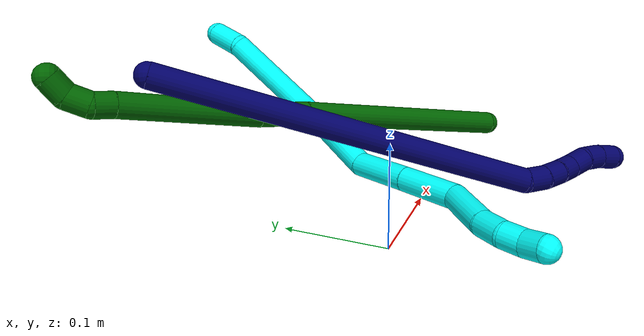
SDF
<sdf version="1.7">
 <world name="default">
  <model name="photoneo_s_sensor">
   <static>1</static>
   <pose>0 0 2 1.57079 1.57079 3.14159</pose>
   <link name="link">
    <inertial><mass>0.1</mass></inertial>
    <sensor name="sensor" type="depth">
     <update_rate>30</update_rate>
     <camera>
      <horizontal_fov>1.22</horizontal_fov>
      <image><width>1920</width><height>1200</height><format>B8G8R8</format></image>
      <clip><near>0.1</near><far>4</far></clip>
      <depth_camera><output>points</output></depth_camera>
     </camera>
     <plugin name="camera_plugin" filename="libgazebo_ros_depth_camera.so">
      <baseline>0.2</baseline>
      <alwaysOn>1</alwaysOn>
      <updateRate>0.0</updateRate>
      <cameraName>camera_ir</cameraName>
      <imageTopicName>/camera/color/image_raw</imageTopicName>
      <cameraInfoTopicName>/camera/color/camera_info</cameraInfoTopicName>
      <depthImageTopicName>/camera/depth/image_raw</depthImageTopicName>
      <depthImageCameraInfoTopicName>/camera/depth/camera_info</depthImageCameraInfoTopicName>
      <pointCloudTopicName>/camera/depth/points</pointCloudTopicName>
      <frameName>fr_optical</frameName>
      <pointCloudCutoff>0.1</pointCloudCutoff>
      <pointCloudCutoffMax>2.0</pointCloudCutoffMax>
      <distortionK1>0</distortionK1>
      <distortionK2>0</distortionK2>
      <distortionK3>0</distortionK3>
      <distortionT1>0</distortionT1>
      <distortionT2>0</distortionT2>
      <CxPrime>0</CxPrime>
      <Cx>0</Cx>
      <Cy>0</Cy>
      <focalLength>0</focalLength>
      <hackBaseline>0</hackBaseline>
     </plugin>
    </sensor>
   </link>
  </model>
  <model name="bin">
   <static>1</static>
   <link name="bottom">
    <collision name="collision-bottom">
     <pose>0 0 -0.01 0 -0 0</pose>
     <geometry><box><size>0.8 0.6 0.02</size></box></geometry>
     <surface>
      <friction><ode><mu>100</mu><mu2>100</mu2></ode></friction>
      <contact><collide_bitmask>65535</collide_bitmask></contact>
     </surface>
    </collision>
   </link>
   <link name="west_wall">
    <collision name="collision-west_wall">
     <pose>-0.41 0 0.1 0 -0 0</pose>
     <geometry><box><size>0.02 0.6 0.2</size></box></geometry>
     <surface>
      <friction><ode><mu>100</mu><mu2>100</mu2></ode></friction>
      <contact><collide_bitmask>65535</collide_bitmask></contact>
     </surface>
    </collision>
   </link>
   <link name="east_wall">
    <collision name="collision-east_wall">
     <pose>0.41 0 0.1 0 -0 0</pose>
     <geometry><box><size>0.02 0.6 0.2</size></box></geometry>
     <surface>
      <friction><ode><mu>100</mu><mu2>100</mu2></ode></friction>
      <contact><collide_bitmask>65535</collide_bitmask></contact>
     </surface>
    </collision>
   </link>
   <link name="south_wall">
    <collision name="collision-south_wall">
     <pose>0 -0.31 0.1 0 -0 0</pose>
     <geometry><box><size>0.8 0.02 0.2</size></box></geometry>
     <surface>
      <friction><ode><mu>100</mu><mu2>100</mu2></ode></friction>
      <contact><collide_bitmask>65535</collide_bitmask></contact>
     </surface>
    </collision>
   </link>
   <link name="north_wall">
    <collision name="collision-north_wall">
     <pose>0 0.31 0.1 0 -0 0</pose>
     <geometry><box><size>0.8 0.02 0.2</size></box></geometry>
     <surface>
      <friction><ode><mu>100</mu><mu2>100</mu2></ode></friction>
      <contact><collide_bitmask>65535</collide_bitmask></contact>
     </surface>
    </collision>
   </link>
  </model>
  <model name="3">
   <static>0</static>
   <link name="3">
    <collision name="collision-cylinder-e_1_1_4">
     <pose>-0.001632 -0.00032 -0.018961 3.12474 -0.085861 -2.75425</pose>
     <geometry><cylinder><radius>0.0125</radius><length>0.038068</length></cylinder></geometry>
     <surface>
      <friction><ode><mu>1.16</mu><mu2>1.16</mu2><slip1>0</slip1><slip2>0</slip2></ode></friction>
      <contact><ode><kp>1e+06</kp><kd>1</kd><max_vel>0</max_vel><min_depth>0.001</min_depth></ode></contact>
     </surface>
    </collision>
    <visual name="visual-cylinder-e_1_1_4">
     <pose>-0.001632 -0.00032 -0.018961 3.12474 -0.085861 -2.75425</pose>
     <geometry><cylinder><radius>0.0125</radius><length>0.038068</length></cylinder></geometry>
     <material><ambient>0.003922 1 0.996078 1</ambient></material>
    </visual>
    <collision name="collision-cylinder-e_2_4_5">
     <pose>-0.004627 0.027101 -0.09818 -2.71016 -0.020532 0.093633</pose>
     <geometry><cylinder><radius>0.0125</radius><length>0.1327</length></cylinder></geometry>
     <surface>
      <friction><ode><mu>1.16</mu><mu2>1.16</mu2><slip1>0</slip1><slip2>0</slip2></ode></friction>
      <contact><ode><kp>1e+06</kp><kd>1</kd><max_vel>0</max_vel><min_depth>0.001</min_depth></ode></contact>
     </surface>
    </collision>
    <visual name="visual-cylinder-e_2_4_5">
     <pose>-0.004627 0.027101 -0.09818 -2.71016 -0.020532 0.093633</pose>
     <geometry><cylinder><radius>0.0125</radius><length>0.1327</length></cylinder></geometry>
     <material><ambient>0.003922 1 0.996078 1</ambient></material>
    </visual>
    <collision name="collision-cylinder-e_3_5_6">
     <pose>-0.018281 0.055393 -0.195499 -3.12672 -0.320217 3.04957</pose>
     <geometry><cylinder><radius>0.0125</radius><length>0.078102</length></cylinder></geometry>
     <surface>
      <friction><ode><mu>1.16</mu><mu2>1.16</mu2><slip1>0</slip1><slip2>0</slip2></ode></friction>
      <contact><ode><kp>1e+06</kp><kd>1</kd><max_vel>0</max_vel><min_depth>0.001</min_depth></ode></contact>
     </surface>
    </collision>
    <visual name="visual-cylinder-e_3_5_6">
     <pose>-0.018281 0.055393 -0.195499 -3.12672 -0.320217 3.04957</pose>
     <geometry><cylinder><radius>0.0125</radius><length>0.078102</length></cylinder></geometry>
     <material><ambient>0.003922 1 0.996078 1</ambient></material>
    </visual>
    <collision name="collision-cylinder-e_4_6_7">
     <pose>-0.033223 0.046602 -0.262773 2.84171 -0.083593 -0.540118</pose>
     <geometry><cylinder><radius>0.0125</radius><length>0.063468</length></cylinder></geometry>
     <surface>
      <friction><ode><mu>1.16</mu><mu2>1.16</mu2><slip1>0</slip1><slip2>0</slip2></ode></friction>
      <contact><ode><kp>1e+06</kp><kd>1</kd><max_vel>0</max_vel><min_depth>0.001</min_depth></ode></contact>
     </surface>
    </collision>
    <visual name="visual-cylinder-e_4_6_7">
     <pose>-0.033223 0.046602 -0.262773 2.84171 -0.083593 -0.540118</pose>
     <geometry><cylinder><radius>0.0125</radius><length>0.063468</length></cylinder></geometry>
     <material><ambient>0.003922 1 0.996078 1</ambient></material>
    </visual>
    <collision name="collision-cylinder-e_5_7_8">
     <pose>-0.037548 0.029724 -0.322526 2.89181 -0.054902 -0.430639</pose>
     <geometry><cylinder><radius>0.0125</radius><length>0.061068</length></cylinder></geometry>
     <surface>
      <friction><ode><mu>1.16</mu><mu2>1.16</mu2><slip1>0</slip1><slip2>0</slip2></ode></friction>
      <contact><ode><kp>1e+06</kp><kd>1</kd><max_vel>0</max_vel><min_depth>0.001</min_depth></ode></contact>
     </surface>
    </collision>
    <visual name="visual-cylinder-e_5_7_8">
     <pose>-0.037548 0.029724 -0.322526 2.89181 -0.054902 -0.430639</pose>
     <geometry><cylinder><radius>0.0125</radius><length>0.061068</length></cylinder></geometry>
     <material><ambient>0.003922 1 0.996078 1</ambient></material>
    </visual>
    <collision name="collision-cylinder-e_6_8_9">
     <pose>-0.05307 0.012532 -0.374024 2.72731 -0.523534 -1.81125</pose>
     <geometry><cylinder><radius>0.0125</radius><length>0.055391</length></cylinder></geometry>
     <surface>
      <friction><ode><mu>1.16</mu><mu2>1.16</mu2><slip1>0</slip1><slip2>0</slip2></ode></friction>
      <contact><ode><kp>1e+06</kp><kd>1</kd><max_vel>0</max_vel><min_depth>0.001</min_depth></ode></contact>
     </surface>
    </collision>
    <visual name="visual-cylinder-e_6_8_9">
     <pose>-0.05307 0.012532 -0.374024 2.72731 -0.523534 -1.81125</pose>
     <geometry><cylinder><radius>0.0125</radius><length>0.055391</length></cylinder></geometry>
     <material><ambient>0.003922 1 0.996078 1</ambient></material>
    </visual>
    <collision name="collision-cylinder-e_7_9_10">
     <pose>-0.071288 -0.002454 -0.408143 2.72849 -0.318072 -1.30661</pose>
     <geometry><cylinder><radius>0.0125</radius><length>0.027961</length></cylinder></geometry>
     <surface>
      <friction><ode><mu>1.16</mu><mu2>1.16</mu2><slip1>0</slip1><slip2>0</slip2></ode></friction>
      <contact><ode><kp>1e+06</kp><kd>1</kd><max_vel>0</max_vel><min_depth>0.001</min_depth></ode></contact>
     </surface>
    </collision>
    <visual name="visual-cylinder-e_7_9_10">
     <pose>-0.071288 -0.002454 -0.408143 2.72849 -0.318072 -1.30661</pose>
     <geometry><cylinder><radius>0.0125</radius><length>0.027961</length></cylinder></geometry>
     <material><ambient>0.003922 1 0.996078 1</ambient></material>
    </visual>
    <collision name="collision-cylinder-e_8_10_11">
     <pose>-0.076396 -0.010418 -0.430685 2.89319 -0.068566 -0.536193</pose>
     <geometry><cylinder><radius>0.0125</radius><length>0.021467</length></cylinder></geometry>
     <surface>
      <friction><ode><mu>1.16</mu><mu2>1.16</mu2><slip1>0</slip1><slip2>0</slip2></ode></friction>
      <contact><ode><kp>1e+06</kp><kd>1</kd><max_vel>0</max_vel><min_depth>0.001</min_depth></ode></contact>
     </surface>
    </collision>
    <visual name="visual-cylinder-e_8_10_11">
     <pose>-0.076396 -0.010418 -0.430685 2.89319 -0.068566 -0.536193</pose>
     <geometry><cylinder><radius>0.0125</radius><length>0.021467</length></cylinder></geometry>
     <material><ambient>0.003922 1 0.996078 1</ambient></material>
    </visual>
    <collision name="collision-cylinder-e_9_11_2">
     <pose>-0.078774 -0.018266 -0.45048 2.6357 -0.151452 -0.571009</pose>
     <geometry><cylinder><radius>0.0125</radius><length>0.021776</length></cylinder></geometry>
     <surface>
      <friction><ode><mu>1.16</mu><mu2>1.16</mu2><slip1>0</slip1><slip2>0</slip2></ode></friction>
      <contact><ode><kp>1e+06</kp><kd>1</kd><max_vel>0</max_vel><min_depth>0.001</min_depth></ode></contact>
     </surface>
    </collision>
    <visual name="visual-cylinder-e_9_11_2">
     <pose>-0.078774 -0.018266 -0.45048 2.6357 -0.151452 -0.571009</pose>
     <geometry><cylinder><radius>0.0125</radius><length>0.021776</length></cylinder></geometry>
     <material><ambient>0.003922 1 0.996078 1</ambient></material>
    </visual>
    <collision name="collision-sphere-2">
     <pose>-0.080417 -0.023482 -0.459895 0 -0 0</pose>
     <geometry><sphere><radius>0.0125</radius></sphere></geometry>
     <surface>
      <friction><ode><mu>1.16</mu><mu2>1.16</mu2><slip1>0</slip1><slip2>0</slip2></ode></friction>
      <contact><ode><kp>1e+06</kp><kd>1</kd><max_vel>0</max_vel><min_depth>0.001</min_depth></ode></contact>
     </surface>
    </collision>
    <visual name="visual-sphere-2">
     <pose>-0.080417 -0.023482 -0.459895 0 -0 0</pose>
     <geometry><sphere><radius>0.0125</radius></sphere></geometry>
     <material><ambient>0.003922 1 0.996078 1</ambient></material>
    </visual>
    <collision name="collision-sphere-11">
     <pose>-0.077131 -0.01305 -0.441065 0 -0 0</pose>
     <geometry><sphere><radius>0.0125</radius></sphere></geometry>
     <surface>
      <friction><ode><mu>1.16</mu><mu2>1.16</mu2><slip1>0</slip1><slip2>0</slip2></ode></friction>
      <contact><ode><kp>1e+06</kp><kd>1</kd><max_vel>0</max_vel><min_depth>0.001</min_depth></ode></contact>
     </surface>
    </collision>
    <visual name="visual-sphere-11">
     <pose>-0.077131 -0.01305 -0.441065 0 -0 0</pose>
     <geometry><sphere><radius>0.0125</radius></sphere></geometry>
     <material><ambient>0.003922 1 0.996078 1</ambient></material>
    </visual>
    <collision name="collision-sphere-10">
     <pose>-0.07566 -0.007785 -0.420305 0 -0 0</pose>
     <geometry><sphere><radius>0.0125</radius></sphere></geometry>
     <surface>
      <friction><ode><mu>1.16</mu><mu2>1.16</mu2><slip1>0</slip1><slip2>0</slip2></ode></friction>
      <contact><ode><kp>1e+06</kp><kd>1</kd><max_vel>0</max_vel><min_depth>0.001</min_depth></ode></contact>
     </surface>
    </collision>
    <visual name="visual-sphere-10">
     <pose>-0.07566 -0.007785 -0.420305 0 -0 0</pose>
     <geometry><sphere><radius>0.0125</radius></sphere></geometry>
     <material><ambient>0.003922 1 0.996078 1</ambient></material>
    </visual>
    <collision name="collision-sphere-9">
     <pose>-0.066916 0.002877 -0.395981 0 -0 0</pose>
     <geometry><sphere><radius>0.0125</radius></sphere></geometry>
     <surface>
      <friction><ode><mu>1.16</mu><mu2>1.16</mu2><slip1>0</slip1><slip2>0</slip2></ode></friction>
      <contact><ode><kp>1e+06</kp><kd>1</kd><max_vel>0</max_vel><min_depth>0.001</min_depth></ode></contact>
     </surface>
    </collision>
    <visual name="visual-sphere-9">
     <pose>-0.066916 0.002877 -0.395981 0 -0 0</pose>
     <geometry><sphere><radius>0.0125</radius></sphere></geometry>
     <material><ambient>0.003922 1 0.996078 1</ambient></material>
    </visual>
    <collision name="collision-sphere-4">
     <pose>-0.003265 -0.000639 -0.037922 0 -0 0</pose>
     <geometry><sphere><radius>0.0125</radius></sphere></geometry>
     <surface>
      <friction><ode><mu>1.16</mu><mu2>1.16</mu2><slip1>0</slip1><slip2>0</slip2></ode></friction>
      <contact><ode><kp>1e+06</kp><kd>1</kd><max_vel>0</max_vel><min_depth>0.001</min_depth></ode></contact>
     </surface>
    </collision>
    <visual name="visual-sphere-4">
     <pose>-0.003265 -0.000639 -0.037922 0 -0 0</pose>
     <geometry><sphere><radius>0.0125</radius></sphere></geometry>
     <material><ambient>0.003922 1 0.996078 1</ambient></material>
    </visual>
    <collision name="collision-sphere-1">
     <geometry><sphere><radius>0.0125</radius></sphere></geometry>
     <surface>
      <friction><ode><mu>1.16</mu><mu2>1.16</mu2><slip1>0</slip1><slip2>0</slip2></ode></friction>
      <contact><ode><kp>1e+06</kp><kd>1</kd><max_vel>0</max_vel><min_depth>0.001</min_depth></ode></contact>
     </surface>
    </collision>
    <visual name="visual-sphere-1">
     <geometry><sphere><radius>0.0125</radius></sphere></geometry>
     <material><ambient>0.003922 1 0.996078 1</ambient></material>
    </visual>
    <collision name="collision-sphere-8">
     <pose>-0.039224 0.022187 -0.352068 0 -0 0</pose>
     <geometry><sphere><radius>0.0125</radius></sphere></geometry>
     <surface>
      <friction><ode><mu>1.16</mu><mu2>1.16</mu2><slip1>0</slip1><slip2>0</slip2></ode></friction>
      <contact><ode><kp>1e+06</kp><kd>1</kd><max_vel>0</max_vel><min_depth>0.001</min_depth></ode></contact>
     </surface>
    </collision>
    <visual name="visual-sphere-8">
     <pose>-0.039224 0.022187 -0.352068 0 -0 0</pose>
     <geometry><sphere><radius>0.0125</radius></sphere></geometry>
     <material><ambient>0.003922 1 0.996078 1</ambient></material>
    </visual>
    <collision name="collision-sphere-5">
     <pose>-0.005989 0.054841 -0.158437 0 -0 0</pose>
     <geometry><sphere><radius>0.0125</radius></sphere></geometry>
     <surface>
      <friction><ode><mu>1.16</mu><mu2>1.16</mu2><slip1>0</slip1><slip2>0</slip2></ode></friction>
      <contact><ode><kp>1e+06</kp><kd>1</kd><max_vel>0</max_vel><min_depth>0.001</min_depth></ode></contact>
     </surface>
    </collision>
    <visual name="visual-sphere-5">
     <pose>-0.005989 0.054841 -0.158437 0 -0 0</pose>
     <geometry><sphere><radius>0.0125</radius></sphere></geometry>
     <material><ambient>0.003922 1 0.996078 1</ambient></material>
    </visual>
    <collision name="collision-sphere-6">
     <pose>-0.030573 0.055944 -0.232561 0 -0 0</pose>
     <geometry><sphere><radius>0.0125</radius></sphere></geometry>
     <surface>
      <friction><ode><mu>1.16</mu><mu2>1.16</mu2><slip1>0</slip1><slip2>0</slip2></ode></friction>
      <contact><ode><kp>1e+06</kp><kd>1</kd><max_vel>0</max_vel><min_depth>0.001</min_depth></ode></contact>
     </surface>
    </collision>
    <visual name="visual-sphere-6">
     <pose>-0.030573 0.055944 -0.232561 0 -0 0</pose>
     <geometry><sphere><radius>0.0125</radius></sphere></geometry>
     <material><ambient>0.003922 1 0.996078 1</ambient></material>
    </visual>
    <collision name="collision-sphere-7">
     <pose>-0.035873 0.03726 -0.292984 0 -0 0</pose>
     <geometry><sphere><radius>0.0125</radius></sphere></geometry>
     <surface>
      <friction><ode><mu>1.16</mu><mu2>1.16</mu2><slip1>0</slip1><slip2>0</slip2></ode></friction>
      <contact><ode><kp>1e+06</kp><kd>1</kd><max_vel>0</max_vel><min_depth>0.001</min_depth></ode></contact>
     </surface>
    </collision>
    <visual name="visual-sphere-7">
     <pose>-0.035873 0.03726 -0.292984 0 -0 0</pose>
     <geometry><sphere><radius>0.0125</radius></sphere></geometry>
     <material><ambient>0.003922 1 0.996078 1</ambient></material>
    </visual>
    <inertial>
     <pose>-0.029587 0.025375 -0.233155 0 -0 0</pose>
     <mass>0.5</mass>
     <inertia>
      <ixx>0.000167</ixx>
      <ixy>0</ixy>
      <ixz>0</ixz>
      <iyy>-0.000187</iyy>
      <iyz>0</iyz>
      <izz>-6.9e-05</izz>
     </inertia>
    </inertial>
   </link>
   <pose>0.19887 0.281077 0.117123 -1.37277 -0.302711 -0.324055</pose>
  </model>
  <model name="6">
   <static>0</static>
   <link name="6">
    <collision name="collision-cylinder-e_1_1_4">
     <pose>-0.022474 0.031094 0.114088 -0.26608 -0.187813 0.025208</pose>
     <geometry><cylinder><radius>0.0125</radius><length>0.240733</length></cylinder></geometry>
     <surface>
      <friction><ode><mu>1.16</mu><mu2>1.16</mu2><slip1>0</slip1><slip2>0</slip2></ode></friction>
      <contact><ode><kp>1e+06</kp><kd>1</kd><max_vel>0</max_vel><min_depth>0.001</min_depth></ode></contact>
     </surface>
    </collision>
    <visual name="visual-cylinder-e_1_1_4">
     <pose>-0.022474 0.031094 0.114088 -0.26608 -0.187813 0.025208</pose>
     <geometry><cylinder><radius>0.0125</radius><length>0.240733</length></cylinder></geometry>
     <material><ambient>0 0.392157 0.003922 1</ambient></material>
    </visual>
    <collision name="collision-cylinder-e_2_4_5">
     <pose>-0.048113 0.06962 0.253007 -0.290829 -0.121548 0.017822</pose>
     <geometry><cylinder><radius>0.0125</radius><length>0.052222</length></cylinder></geometry>
     <surface>
      <friction><ode><mu>1.16</mu><mu2>1.16</mu2><slip1>0</slip1><slip2>0</slip2></ode></friction>
      <contact><ode><kp>1e+06</kp><kd>1</kd><max_vel>0</max_vel><min_depth>0.001</min_depth></ode></contact>
     </surface>
    </collision>
    <visual name="visual-cylinder-e_2_4_5">
     <pose>-0.048113 0.06962 0.253007 -0.290829 -0.121548 0.017822</pose>
     <geometry><cylinder><radius>0.0125</radius><length>0.052222</length></cylinder></geometry>
     <material><ambient>0 0.392157 0.003922 1</ambient></material>
    </visual>
    <collision name="collision-cylinder-e_3_5_6">
     <pose>-0.067621 0.100539 0.343544 -0.343297 -0.230051 0.040052</pose>
     <geometry><cylinder><radius>0.0125</radius><length>0.143333</length></cylinder></geometry>
     <surface>
      <friction><ode><mu>1.16</mu><mu2>1.16</mu2><slip1>0</slip1><slip2>0</slip2></ode></friction>
      <contact><ode><kp>1e+06</kp><kd>1</kd><max_vel>0</max_vel><min_depth>0.001</min_depth></ode></contact>
     </surface>
    </collision>
    <visual name="visual-cylinder-e_3_5_6">
     <pose>-0.067621 0.100539 0.343544 -0.343297 -0.230051 0.040052</pose>
     <geometry><cylinder><radius>0.0125</radius><length>0.143333</length></cylinder></geometry>
     <material><ambient>0 0.392157 0.003922 1</ambient></material>
    </visual>
    <collision name="collision-cylinder-e_4_6_7">
     <pose>-0.085507 0.127921 0.418347 -0.404574 -0.154778 0.031805</pose>
     <geometry><cylinder><radius>0.0125</radius><length>0.020029</length></cylinder></geometry>
     <surface>
      <friction><ode><mu>1.16</mu><mu2>1.16</mu2><slip1>0</slip1><slip2>0</slip2></ode></friction>
      <contact><ode><kp>1e+06</kp><kd>1</kd><max_vel>0</max_vel><min_depth>0.001</min_depth></ode></contact>
     </surface>
    </collision>
    <visual name="visual-cylinder-e_4_6_7">
     <pose>-0.085507 0.127921 0.418347 -0.404574 -0.154778 0.031805</pose>
     <geometry><cylinder><radius>0.0125</radius><length>0.020029</length></cylinder></geometry>
     <material><ambient>0 0.392157 0.003922 1</ambient></material>
    </visual>
    <collision name="collision-cylinder-e_5_7_8">
     <pose>-0.091589 0.131226 0.437586 0.058046 -0.420107 -0.012379</pose>
     <geometry><cylinder><radius>0.0125</radius><length>0.022256</length></cylinder></geometry>
     <surface>
      <friction><ode><mu>1.16</mu><mu2>1.16</mu2><slip1>0</slip1><slip2>0</slip2></ode></friction>
      <contact><ode><kp>1e+06</kp><kd>1</kd><max_vel>0</max_vel><min_depth>0.001</min_depth></ode></contact>
     </surface>
    </collision>
    <visual name="visual-cylinder-e_5_7_8">
     <pose>-0.091589 0.131226 0.437586 0.058046 -0.420107 -0.012379</pose>
     <geometry><cylinder><radius>0.0125</radius><length>0.022256</length></cylinder></geometry>
     <material><ambient>0 0.392157 0.003922 1</ambient></material>
    </visual>
    <collision name="collision-cylinder-e_6_8_2">
     <pose>-0.104796 0.130394 0.45402 0.038629 -0.942617 -0.019688</pose>
     <geometry><cylinder><radius>0.0125</radius><length>0.021427</length></cylinder></geometry>
     <surface>
      <friction><ode><mu>1.16</mu><mu2>1.16</mu2><slip1>0</slip1><slip2>0</slip2></ode></friction>
      <contact><ode><kp>1e+06</kp><kd>1</kd><max_vel>0</max_vel><min_depth>0.001</min_depth></ode></contact>
     </surface>
    </collision>
    <visual name="visual-cylinder-e_6_8_2">
     <pose>-0.104796 0.130394 0.45402 0.038629 -0.942617 -0.019688</pose>
     <geometry><cylinder><radius>0.0125</radius><length>0.021427</length></cylinder></geometry>
     <material><ambient>0 0.392157 0.003922 1</ambient></material>
    </visual>
    <collision name="collision-sphere-2">
     <pose>-0.113465 0.13015 0.460312 0 -0 0</pose>
     <geometry><sphere><radius>0.0125</radius></sphere></geometry>
     <surface>
      <friction><ode><mu>1.16</mu><mu2>1.16</mu2><slip1>0</slip1><slip2>0</slip2></ode></friction>
      <contact><ode><kp>1e+06</kp><kd>1</kd><max_vel>0</max_vel><min_depth>0.001</min_depth></ode></contact>
     </surface>
    </collision>
    <visual name="visual-sphere-2">
     <pose>-0.113465 0.13015 0.460312 0 -0 0</pose>
     <geometry><sphere><radius>0.0125</radius></sphere></geometry>
     <material><ambient>0 0.392157 0.003922 1</ambient></material>
    </visual>
    <collision name="collision-sphere-4">
     <pose>-0.044947 0.062188 0.228177 0 -0 0</pose>
     <geometry><sphere><radius>0.0125</radius></sphere></geometry>
     <surface>
      <friction><ode><mu>1.16</mu><mu2>1.16</mu2><slip1>0</slip1><slip2>0</slip2></ode></friction>
      <contact><ode><kp>1e+06</kp><kd>1</kd><max_vel>0</max_vel><min_depth>0.001</min_depth></ode></contact>
     </surface>
    </collision>
    <visual name="visual-sphere-4">
     <pose>-0.044947 0.062188 0.228177 0 -0 0</pose>
     <geometry><sphere><radius>0.0125</radius></sphere></geometry>
     <material><ambient>0 0.392157 0.003922 1</ambient></material>
    </visual>
    <collision name="collision-sphere-1">
     <geometry><sphere><radius>0.0125</radius></sphere></geometry>
     <surface>
      <friction><ode><mu>1.16</mu><mu2>1.16</mu2><slip1>0</slip1><slip2>0</slip2></ode></friction>
      <contact><ode><kp>1e+06</kp><kd>1</kd><max_vel>0</max_vel><min_depth>0.001</min_depth></ode></contact>
     </surface>
    </collision>
    <visual name="visual-sphere-1">
     <geometry><sphere><radius>0.0125</radius></sphere></geometry>
     <material><ambient>0 0.392157 0.003922 1</ambient></material>
    </visual>
    <collision name="collision-sphere-8">
     <pose>-0.096128 0.130637 0.447729 0 -0 0</pose>
     <geometry><sphere><radius>0.0125</radius></sphere></geometry>
     <surface>
      <friction><ode><mu>1.16</mu><mu2>1.16</mu2><slip1>0</slip1><slip2>0</slip2></ode></friction>
      <contact><ode><kp>1e+06</kp><kd>1</kd><max_vel>0</max_vel><min_depth>0.001</min_depth></ode></contact>
     </surface>
    </collision>
    <visual name="visual-sphere-8">
     <pose>-0.096128 0.130637 0.447729 0 -0 0</pose>
     <geometry><sphere><radius>0.0125</radius></sphere></geometry>
     <material><ambient>0 0.392157 0.003922 1</ambient></material>
    </visual>
    <collision name="collision-sphere-5">
     <pose>-0.051279 0.077052 0.277837 0 -0 0</pose>
     <geometry><sphere><radius>0.0125</radius></sphere></geometry>
     <surface>
      <friction><ode><mu>1.16</mu><mu2>1.16</mu2><slip1>0</slip1><slip2>0</slip2></ode></friction>
      <contact><ode><kp>1e+06</kp><kd>1</kd><max_vel>0</max_vel><min_depth>0.001</min_depth></ode></contact>
     </surface>
    </collision>
    <visual name="visual-sphere-5">
     <pose>-0.051279 0.077052 0.277837 0 -0 0</pose>
     <geometry><sphere><radius>0.0125</radius></sphere></geometry>
     <material><ambient>0 0.392157 0.003922 1</ambient></material>
    </visual>
    <collision name="collision-sphere-6">
     <pose>-0.083963 0.124026 0.40925 0 -0 0</pose>
     <geometry><sphere><radius>0.0125</radius></sphere></geometry>
     <surface>
      <friction><ode><mu>1.16</mu><mu2>1.16</mu2><slip1>0</slip1><slip2>0</slip2></ode></friction>
      <contact><ode><kp>1e+06</kp><kd>1</kd><max_vel>0</max_vel><min_depth>0.001</min_depth></ode></contact>
     </surface>
    </collision>
    <visual name="visual-sphere-6">
     <pose>-0.083963 0.124026 0.40925 0 -0 0</pose>
     <geometry><sphere><radius>0.0125</radius></sphere></geometry>
     <material><ambient>0 0.392157 0.003922 1</ambient></material>
    </visual>
    <collision name="collision-sphere-7">
     <pose>-0.087051 0.131816 0.427443 0 -0 0</pose>
     <geometry><sphere><radius>0.0125</radius></sphere></geometry>
     <surface>
      <friction><ode><mu>1.16</mu><mu2>1.16</mu2><slip1>0</slip1><slip2>0</slip2></ode></friction>
      <contact><ode><kp>1e+06</kp><kd>1</kd><max_vel>0</max_vel><min_depth>0.001</min_depth></ode></contact>
     </surface>
    </collision>
    <visual name="visual-sphere-7">
     <pose>-0.087051 0.131816 0.427443 0 -0 0</pose>
     <geometry><sphere><radius>0.0125</radius></sphere></geometry>
     <material><ambient>0 0.392157 0.003922 1</ambient></material>
    </visual>
    <inertial>
     <pose>-0.047223 0.067616 0.23553 0 -0 0</pose>
     <mass>0.5</mass>
     <inertia>
      <ixx>0.001443</ixx>
      <ixy>0</ixy>
      <ixz>0</ixz>
      <iyy>0.001436</iyy>
      <iyz>0</iyz>
      <izz>-7.3e-05</izz>
     </inertia>
    </inertial>
   </link>
   <pose>0.292617 -0.025503 0.012517 0.823141 1.5275 2.9744</pose>
  </model>
  <model name="7">
   <static>0</static>
   <link name="7">
    <collision name="collision-cylinder-e_1_1_4">
     <pose>0.062215 -0.104155 0.143568 0.62762 0.337356 0.110421</pose>
     <geometry><cylinder><radius>0.0125</radius><length>0.37593</length></cylinder></geometry>
     <surface>
      <friction><ode><mu>1.16</mu><mu2>1.16</mu2><slip1>0</slip1><slip2>0</slip2></ode></friction>
      <contact><ode><kp>1e+06</kp><kd>1</kd><max_vel>0</max_vel><min_depth>0.001</min_depth></ode></contact>
     </surface>
    </collision>
    <visual name="visual-cylinder-e_1_1_4">
     <pose>0.062215 -0.104155 0.143568 0.62762 0.337356 0.110421</pose>
     <geometry><cylinder><radius>0.0125</radius><length>0.37593</length></cylinder></geometry>
     <material><ambient>0.003922 0 0.403922 1</ambient></material>
    </visual>
    <collision name="collision-cylinder-e_2_4_5">
     <pose>0.131918 -0.211753 0.295319 0.398292 0.700664 0.147226</pose>
     <geometry><cylinder><radius>0.0125</radius><length>0.023226</length></cylinder></geometry>
     <surface>
      <friction><ode><mu>1.16</mu><mu2>1.16</mu2><slip1>0</slip1><slip2>0</slip2></ode></friction>
      <contact><ode><kp>1e+06</kp><kd>1</kd><max_vel>0</max_vel><min_depth>0.001</min_depth></ode></contact>
     </surface>
    </collision>
    <visual name="visual-cylinder-e_2_4_5">
     <pose>0.131918 -0.211753 0.295319 0.398292 0.700664 0.147226</pose>
     <geometry><cylinder><radius>0.0125</radius><length>0.023226</length></cylinder></geometry>
     <material><ambient>0.003922 0 0.403922 1</ambient></material>
    </visual>
    <collision name="collision-cylinder-e_3_5_6">
     <pose>0.14721 -0.21736 0.309837 0.328994 0.861746 0.152315</pose>
     <geometry><cylinder><radius>0.0125</radius><length>0.020567</length></cylinder></geometry>
     <surface>
      <friction><ode><mu>1.16</mu><mu2>1.16</mu2><slip1>0</slip1><slip2>0</slip2></ode></friction>
      <contact><ode><kp>1e+06</kp><kd>1</kd><max_vel>0</max_vel><min_depth>0.001</min_depth></ode></contact>
     </surface>
    </collision>
    <visual name="visual-cylinder-e_3_5_6">
     <pose>0.14721 -0.21736 0.309837 0.328994 0.861746 0.152315</pose>
     <geometry><cylinder><radius>0.0125</radius><length>0.020567</length></cylinder></geometry>
     <material><ambient>0.003922 0 0.403922 1</ambient></material>
    </visual>
    <collision name="collision-cylinder-e_4_6_7">
     <pose>0.163415 -0.221959 0.321189 0.452244 0.984856 0.245613</pose>
     <geometry><cylinder><radius>0.0125</radius><length>0.020164</length></cylinder></geometry>
     <surface>
      <friction><ode><mu>1.16</mu><mu2>1.16</mu2><slip1>0</slip1><slip2>0</slip2></ode></friction>
      <contact><ode><kp>1e+06</kp><kd>1</kd><max_vel>0</max_vel><min_depth>0.001</min_depth></ode></contact>
     </surface>
    </collision>
    <visual name="visual-cylinder-e_4_6_7">
     <pose>0.163415 -0.221959 0.321189 0.452244 0.984856 0.245613</pose>
     <geometry><cylinder><radius>0.0125</radius><length>0.020164</length></cylinder></geometry>
     <material><ambient>0.003922 0 0.403922 1</ambient></material>
    </visual>
    <collision name="collision-cylinder-e_5_7_8">
     <pose>0.179201 -0.22464 0.332942 0.036335 0.830816 0.016028</pose>
     <geometry><cylinder><radius>0.0125</radius><length>0.020001</length></cylinder></geometry>
     <surface>
      <friction><ode><mu>1.16</mu><mu2>1.16</mu2><slip1>0</slip1><slip2>0</slip2></ode></friction>
      <contact><ode><kp>1e+06</kp><kd>1</kd><max_vel>0</max_vel><min_depth>0.001</min_depth></ode></contact>
     </surface>
    </collision>
    <visual name="visual-cylinder-e_5_7_8">
     <pose>0.179201 -0.22464 0.332942 0.036335 0.830816 0.016028</pose>
     <geometry><cylinder><radius>0.0125</radius><length>0.020001</length></cylinder></geometry>
     <material><ambient>0.003922 0 0.403922 1</ambient></material>
    </visual>
    <collision name="collision-cylinder-e_6_8_9">
     <pose>0.193523 -0.22821 0.346126 0.476254 0.763209 0.194192</pose>
     <geometry><cylinder><radius>0.0125</radius><length>0.020072</length></cylinder></geometry>
     <surface>
      <friction><ode><mu>1.16</mu><mu2>1.16</mu2><slip1>0</slip1><slip2>0</slip2></ode></friction>
      <contact><ode><kp>1e+06</kp><kd>1</kd><max_vel>0</max_vel><min_depth>0.001</min_depth></ode></contact>
     </surface>
    </collision>
    <visual name="visual-cylinder-e_6_8_9">
     <pose>0.193523 -0.22821 0.346126 0.476254 0.763209 0.194192</pose>
     <geometry><cylinder><radius>0.0125</radius><length>0.020072</length></cylinder></geometry>
     <material><ambient>0.003922 0 0.403922 1</ambient></material>
    </visual>
    <collision name="collision-cylinder-e_7_9_2">
     <pose>0.20625 -0.235929 0.359469 0.567143 0.616019 0.184896</pose>
     <geometry><cylinder><radius>0.0125</radius><length>0.02004</length></cylinder></geometry>
     <surface>
      <friction><ode><mu>1.16</mu><mu2>1.16</mu2><slip1>0</slip1><slip2>0</slip2></ode></friction>
      <contact><ode><kp>1e+06</kp><kd>1</kd><max_vel>0</max_vel><min_depth>0.001</min_depth></ode></contact>
     </surface>
    </collision>
    <visual name="visual-cylinder-e_7_9_2">
     <pose>0.20625 -0.235929 0.359469 0.567143 0.616019 0.184896</pose>
     <geometry><cylinder><radius>0.0125</radius><length>0.02004</length></cylinder></geometry>
     <material><ambient>0.003922 0 0.403922 1</ambient></material>
    </visual>
    <collision name="collision-sphere-2">
     <pose>0.212039 -0.240322 0.366367 0 -0 0</pose>
     <geometry><sphere><radius>0.0125</radius></sphere></geometry>
     <surface>
      <friction><ode><mu>1.16</mu><mu2>1.16</mu2><slip1>0</slip1><slip2>0</slip2></ode></friction>
      <contact><ode><kp>1e+06</kp><kd>1</kd><max_vel>0</max_vel><min_depth>0.001</min_depth></ode></contact>
     </surface>
    </collision>
    <visual name="visual-sphere-2">
     <pose>0.212039 -0.240322 0.366367 0 -0 0</pose>
     <geometry><sphere><radius>0.0125</radius></sphere></geometry>
     <material><ambient>0.003922 0 0.403922 1</ambient></material>
    </visual>
    <collision name="collision-sphere-9">
     <pose>0.20046 -0.231535 0.352571 0 -0 0</pose>
     <geometry><sphere><radius>0.0125</radius></sphere></geometry>
     <surface>
      <friction><ode><mu>1.16</mu><mu2>1.16</mu2><slip1>0</slip1><slip2>0</slip2></ode></friction>
      <contact><ode><kp>1e+06</kp><kd>1</kd><max_vel>0</max_vel><min_depth>0.001</min_depth></ode></contact>
     </surface>
    </collision>
    <visual name="visual-sphere-9">
     <pose>0.20046 -0.231535 0.352571 0 -0 0</pose>
     <geometry><sphere><radius>0.0125</radius></sphere></geometry>
     <material><ambient>0.003922 0 0.403922 1</ambient></material>
    </visual>
    <collision name="collision-sphere-4">
     <pose>0.12443 -0.20831 0.287136 0 -0 0</pose>
     <geometry><sphere><radius>0.0125</radius></sphere></geometry>
     <surface>
      <friction><ode><mu>1.16</mu><mu2>1.16</mu2><slip1>0</slip1><slip2>0</slip2></ode></friction>
      <contact><ode><kp>1e+06</kp><kd>1</kd><max_vel>0</max_vel><min_depth>0.001</min_depth></ode></contact>
     </surface>
    </collision>
    <visual name="visual-sphere-4">
     <pose>0.12443 -0.20831 0.287136 0 -0 0</pose>
     <geometry><sphere><radius>0.0125</radius></sphere></geometry>
     <material><ambient>0.003922 0 0.403922 1</ambient></material>
    </visual>
    <collision name="collision-sphere-1">
     <geometry><sphere><radius>0.0125</radius></sphere></geometry>
     <surface>
      <friction><ode><mu>1.16</mu><mu2>1.16</mu2><slip1>0</slip1><slip2>0</slip2></ode></friction>
      <contact><ode><kp>1e+06</kp><kd>1</kd><max_vel>0</max_vel><min_depth>0.001</min_depth></ode></contact>
     </surface>
    </collision>
    <visual name="visual-sphere-1">
     <geometry><sphere><radius>0.0125</radius></sphere></geometry>
     <material><ambient>0.003922 0 0.403922 1</ambient></material>
    </visual>
    <collision name="collision-sphere-8">
     <pose>0.186586 -0.224885 0.339681 0 -0 0</pose>
     <geometry><sphere><radius>0.0125</radius></sphere></geometry>
     <surface>
      <friction><ode><mu>1.16</mu><mu2>1.16</mu2><slip1>0</slip1><slip2>0</slip2></ode></friction>
      <contact><ode><kp>1e+06</kp><kd>1</kd><max_vel>0</max_vel><min_depth>0.001</min_depth></ode></contact>
     </surface>
    </collision>
    <visual name="visual-sphere-8">
     <pose>0.186586 -0.224885 0.339681 0 -0 0</pose>
     <geometry><sphere><radius>0.0125</radius></sphere></geometry>
     <material><ambient>0.003922 0 0.403922 1</ambient></material>
    </visual>
    <collision name="collision-sphere-5">
     <pose>0.139405 -0.215196 0.303501 0 -0 0</pose>
     <geometry><sphere><radius>0.0125</radius></sphere></geometry>
     <surface>
      <friction><ode><mu>1.16</mu><mu2>1.16</mu2><slip1>0</slip1><slip2>0</slip2></ode></friction>
      <contact><ode><kp>1e+06</kp><kd>1</kd><max_vel>0</max_vel><min_depth>0.001</min_depth></ode></contact>
     </surface>
    </collision>
    <visual name="visual-sphere-5">
     <pose>0.139405 -0.215196 0.303501 0 -0 0</pose>
     <geometry><sphere><radius>0.0125</radius></sphere></geometry>
     <material><ambient>0.003922 0 0.403922 1</ambient></material>
    </visual>
    <collision name="collision-sphere-6">
     <pose>0.155014 -0.219523 0.316174 0 -0 0</pose>
     <geometry><sphere><radius>0.0125</radius></sphere></geometry>
     <surface>
      <friction><ode><mu>1.16</mu><mu2>1.16</mu2><slip1>0</slip1><slip2>0</slip2></ode></friction>
      <contact><ode><kp>1e+06</kp><kd>1</kd><max_vel>0</max_vel><min_depth>0.001</min_depth></ode></contact>
     </surface>
    </collision>
    <visual name="visual-sphere-6">
     <pose>0.155014 -0.219523 0.316174 0 -0 0</pose>
     <geometry><sphere><radius>0.0125</radius></sphere></geometry>
     <material><ambient>0.003922 0 0.403922 1</ambient></material>
    </visual>
    <collision name="collision-sphere-7">
     <pose>0.171815 -0.224396 0.326204 0 -0 0</pose>
     <geometry><sphere><radius>0.0125</radius></sphere></geometry>
     <surface>
      <friction><ode><mu>1.16</mu><mu2>1.16</mu2><slip1>0</slip1><slip2>0</slip2></ode></friction>
      <contact><ode><kp>1e+06</kp><kd>1</kd><max_vel>0</max_vel><min_depth>0.001</min_depth></ode></contact>
     </surface>
    </collision>
    <visual name="visual-sphere-7">
     <pose>0.171815 -0.224396 0.326204 0 -0 0</pose>
     <geometry><sphere><radius>0.0125</radius></sphere></geometry>
     <material><ambient>0.003922 0 0.403922 1</ambient></material>
    </visual>
    <inertial>
     <pose>0.088754 -0.133642 0.18898 0 -0 0</pose>
     <mass>0.5</mass>
     <inertia>
      <ixx>0.004652</ixx>
      <ixy>0</ixy>
      <ixz>0</ixz>
      <iyy>0.004122</iyy>
      <iyz>0</iyz>
      <izz>0.001016</izz>
     </inertia>
    </inertial>
   </link>
   <pose>-0.020224 0.21694 0.140006 1.37396 -0.159504 0.070944</pose>
  </model>
 </world>
</sdf>
